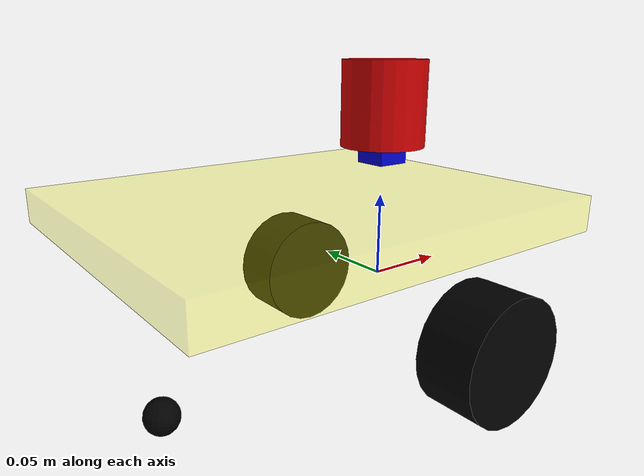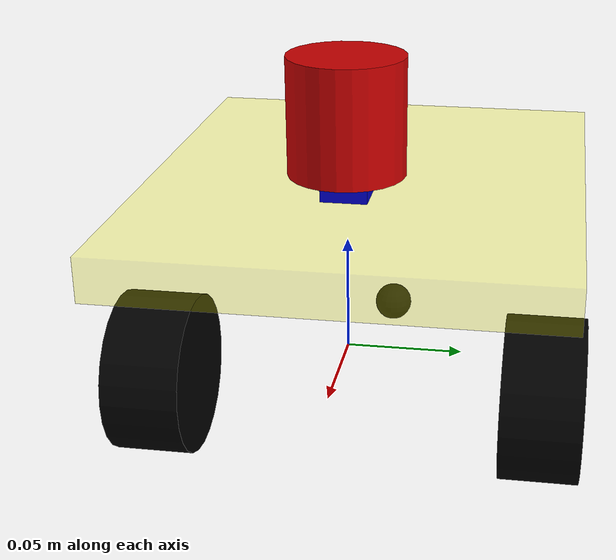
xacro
<?xml version="1.0"?>
<robot name="demobot_urdf" xmlns:xacro="http://www.ros.org/wiki/xacro">

  <xacro:include filename="$(find demobot2_description)/urdf/demobot/demobot_essential.xacro" />

  <link name="base_footprint"/>

  <!-- base_link --> <!--Actual body/chassis of the robot-->
  <link name="base_link">
    <visual>
      <origin xyz="-0.06 0 0.05" rpy="0 0 0" />
      <geometry>
          <box size="${base_length} ${base_width} ${base_height}" />
      </geometry>
      <material name="transyellow">
        <color rgba="1.0 1.0 0.0 0.3"/>
      </material>
    </visual>

    <collision>
      <origin xyz="-0.06 0 0.05" rpy="0 0 0" />
      <geometry>
          <box size="${base_length} ${base_width} ${base_height}" />
      </geometry>
    </collision>
  </link>

  <!-- caster -->
  <link name="caster_link">
    <visual>
      <origin xyz="0 0 0" rpy="0 0 0" />
      <geometry>
	      <sphere radius="${caster_radius}" />
      </geometry>
      <material name="Black" />
    </visual>
    <collision>
      <origin xyz="0 0 0" rpy="0 0 0" />
      <geometry>
	        <sphere radius="${caster_radius}" />
      </geometry>
    </collision>
    <inertial>
      <mass value="${caster_mass}" />
      <origin xyz="0 0 0" />
      <inertia ixx="0.001" ixy="0.0" ixz="0.0"
               iyy="0.001" iyz="0.0"
               izz="0.001" />
    </inertial>
  </link>

  <link name="imu_link">
      <visual>
      <origin xyz="0 0 0" rpy="0 0 0" />
      <geometry>
	      <box size="${imu_length} ${imu_width} ${imu_height}" />
      </geometry>
      <material name="Blue" />
    </visual>
  </link>

  <link name="lidar_link">
      <visual>
      <origin xyz="0 0 0" rpy="0 0 0" />
      <geometry>
	      <cylinder length="${lidar_height}" radius="${lidar_radius}" />
      </geometry>
      <material name="Red" />
    </visual>
  </link>

  <joint name="base_joint" type="fixed">
      <parent link="base_link"/>
      <child link="base_footprint" />
      <origin xyz="0 0 -0.0565" rpy="0 0 0"/>
  </joint>

  <joint name="caster_joint" type="fixed">
    <parent link="base_link"/>
    <child link="caster_link"/>
    <origin xyz="-0.15 0.0 -0.0465" rpy="0 0 0"/>
  </joint>

  <joint name="imu_joint" type="fixed">
    <parent link="base_link"/>
    <child link="imu_link"/>
    <origin xyz="0.0 0.0 0.075" rpy="0 0 0"/>
  </joint>

  <joint name="lidar_joint" type="fixed">
    <parent link="base_link"/>
    <child link="lidar_link"/>
    <origin xyz="0 0 0.105" rpy="0 0 0"/> <!-- default z: 0.105 -->
  </joint>

  <!-- Wheels -->
  <xacro:fixed_wheel lr="left" parent="base_link" dir="1" z_offset="-0.02" roll="${-1.0 * M_PI_2}"/>
  <xacro:fixed_wheel lr="right" parent="base_link" dir="-1" z_offset="-0.02" roll="${-1.0 * M_PI_2}"/>

</robot>

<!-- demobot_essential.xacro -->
<robot name="demobot_essential" xmlns:xacro="http://www.ros.org/wiki/xacro">

<!-- Defining the colors used in this robot -->
  <material name="Black">
    <color rgba="0.0 0.0 0.0 1.0"/>
  </material>

  <material name="White">
    <color rgba="1.0 1.0 1.0 1.0"/>
  </material>

  <material name="Red">
    <color rgba="0.8 0.0 0.0 1.0"/>
  </material>

  <material name="Green">
    <color rgba="0.0 0.8 0.0 1.0"/>
  </material>

  <material name="Blue">
    <color rgba="0.0 0.0 0.8 1.0"/>
  </material>

  <!-- PROPERTY LIST -->
  <!--All units in m-kg-s-radians unit system -->
  <xacro:property name="M_PI" value="3.1415926535897931" />
  <xacro:property name="M_PI_2" value="1.570796327" />
  <xacro:property name="DEG_TO_RAD" value="0.017453293" />

  <!-- Body -->
  <xacro:property name="base_length" value="0.24" />
  <xacro:property name="base_width" value="0.20" />
  <xacro:property name="base_height" value="0.02" />
  <xacro:property name="base_mass" value="5" /> <!--kg-->

  <!-- Wheels -->
  <xacro:property name="wheel_diameter" value="0.073" />
  <xacro:property name="wheel_radius" value="0.0365" />
  <xacro:property name="wheel_height" value="0.035" />
  <xacro:property name="wheel_mass" value="0.25" />
  <xacro:property name="wheel_spacing" value="0.173" />

  <!-- Caster -->
  <xacro:property name="caster_height" value="0.04" />
  <xacro:property name="caster_diameter" value="0.02" />
  <xacro:property name="caster_radius" value="0.01" />
  <xacro:property name="caster_mass" value="0.1" />

  <!-- IMU -->
  <xacro:property name="imu_length" value="0.02" />
  <xacro:property name="imu_width" value="0.02" />
  <xacro:property name="imu_height" value="0.01" />
  <xacro:property name="imu_mass" value="0.01" /> <!--kg-->

  <!-- Lidar -->
  <xacro:property name="lidar_diameter" value="0.05" />
  <xacro:property name="lidar_radius" value="0.025" />
  <xacro:property name="lidar_height" value="0.05" />
  <xacro:property name="lidar_mass" value="0.05" />

  <!-- cylinder_inertia -->
  <xacro:macro name="cylinder_inertia" params="m r h">
    <inertia  ixx="${m*(3*r*r+h*h)/12}" ixy = "0" ixz = "0"
              iyy="${m*(3*r*r+h*h)/12}" iyz = "0"
              izz="${m*r*r/2}" />
  </xacro:macro>
  <!--box_inertia-->
  <!--sphere_inertia-->

  <xacro:macro name="wheel" params="lr parent dir z_offset roll"> <!-- lr: left, right -->
    <link name="${lr}_wheel_link">
      <visual>
        <origin xyz="0 0 0" rpy="0 0 0 " />
        <geometry>
          <cylinder length="${wheel_height}" radius="${wheel_radius}" />
        </geometry>
        <material name="Black" />
      </visual>
      <collision>
        <origin xyz="0 0 0" rpy="0 0 0 " />
        <geometry>
          <cylinder length="${wheel_height}" radius="${wheel_radius}" />
        </geometry>
      </collision>
      <inertial>
        <mass value="${wheel_mass}" />
        <origin xyz="0 0 0" />
        <xacro:cylinder_inertia  m="${wheel_mass}" r="${wheel_radius}" h="${wheel_height}" />
      </inertial>
    </link>

    <joint name="${lr}_wheel_joint" type="continuous">
      <parent link="${parent}"/>
      <child link="${lr}_wheel_link"/>
      <origin xyz="0 ${dir * wheel_spacing / 2} ${z_offset}" rpy="${roll} 0 0" />
      <axis xyz="0 0 1" />
      <limit effort="100" velocity="100"/>
      <dynamics damping="0.0" friction="0.1"/>
    </joint>
  </xacro:macro>

  <!-- Visualization for real robot -->
  <xacro:macro name="fixed_wheel" params="lr parent dir z_offset roll"> <!-- lr: left, right -->
    <link name="${lr}_wheel_link">
      <visual>
        <origin xyz="0 0 0" rpy="0 0 0 " />
        <geometry>
          <cylinder length="${wheel_height}" radius="${wheel_radius}" />
        </geometry>
        <material name="Black" />
      </visual>
      <collision>
        <origin xyz="0 0 0" rpy="0 0 0 " />
        <geometry>
          <cylinder length="${wheel_height}" radius="${wheel_radius}" />
        </geometry>
      </collision>
      <inertial>
        <mass value="${wheel_mass}" />
        <origin xyz="0 0 0" />
        <xacro:cylinder_inertia  m="${wheel_mass}" r="${wheel_radius}" h="${wheel_height}" />
      </inertial>
    </link>

    <joint name="${lr}_wheel_joint" type="fixed">
      <parent link="${parent}"/>
      <child link="${lr}_wheel_link"/>
      <origin xyz="0 ${dir * wheel_spacing / 2} ${z_offset}" rpy="${roll} 0 0" />
      <axis xyz="0 0 1" rpy="0 0 0" />
    </joint>
  </xacro:macro>

</robot>
